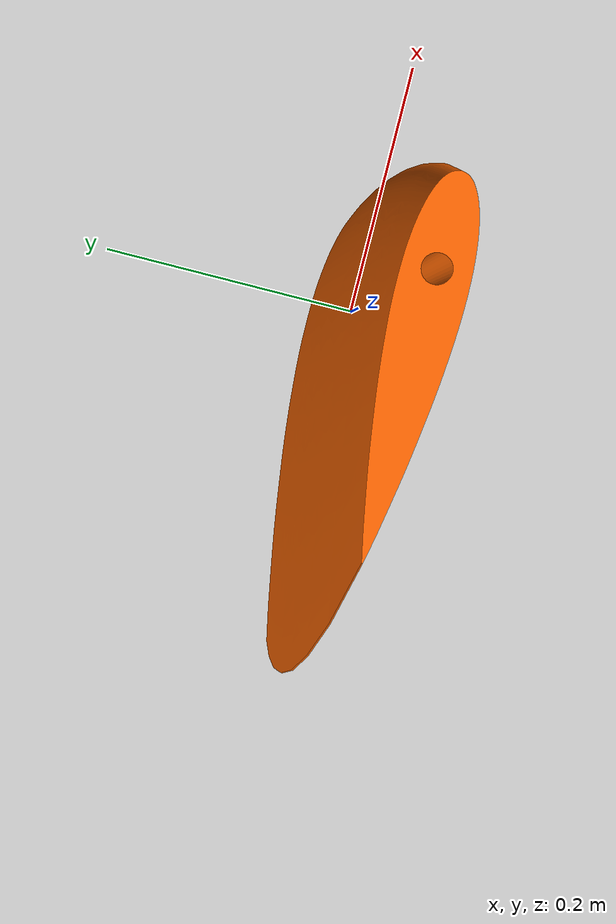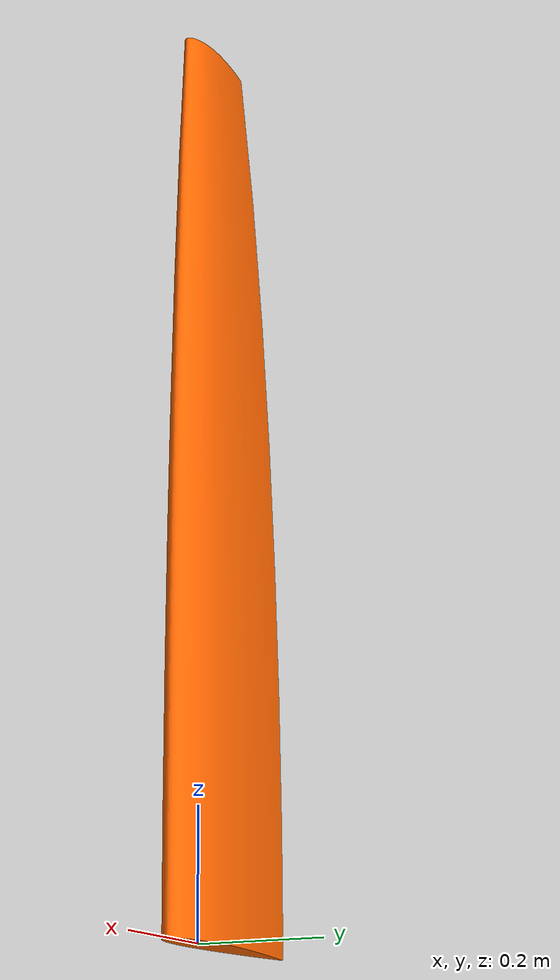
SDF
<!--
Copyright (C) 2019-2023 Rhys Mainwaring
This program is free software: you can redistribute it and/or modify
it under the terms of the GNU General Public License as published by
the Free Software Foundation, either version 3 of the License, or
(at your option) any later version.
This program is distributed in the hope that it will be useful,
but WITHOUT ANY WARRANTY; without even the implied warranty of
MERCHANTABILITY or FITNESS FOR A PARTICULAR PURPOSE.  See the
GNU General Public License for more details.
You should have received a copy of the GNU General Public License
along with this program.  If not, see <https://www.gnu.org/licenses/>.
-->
<?xml version="1.0"?>
<sdf version="1.6">
  <model name="wing_sail_naca0018_1.4m">

    <!-- Plugins -->

    <!--
      Linear approximations to lift / drag coefficient curves for
      NACA 0018 airfoil.
      Foil stalls at approx. 14 degrees (lower in the linear approx.)
    -->
    <plugin name="gz::sim::systems::SailLiftDrag"
        filename="asv_sim2-sail-lift-drag-system">
      <a0>0.0</a0>
      <cla>6.2832</cla>
      <alpha_stall>0.1592</alpha_stall>
      <cla_stall>-0.7083</cla_stall>
      <cda>0.63662</cda>
      <area>0.4858</area>
      <fluid_density>1.2</fluid_density>
      <forward>1 0 0</forward>
      <upward>0 1 0</upward>
      <cp>-0.05 0.0 0.65</cp>
      <link_name>wing_sail_link</link_name>
      <radial_symmetry>true</radial_symmetry>
      <topic>lift_drag</topic>
    </plugin>

    <link name="wing_sail_link">
      <inertial>
        <pose>-0.05 0.0 0.65 0 0 0</pose>
        <mass>2.0</mass>
        <inertia>
          <ixx>0.326733333</ixx>
          <ixy>0</ixy>
          <iyy>0.348266667</iyy>
          <iyz>0</iyz>
          <izz>0.021666667</izz>
        </inertia>
      </inertial>
      <collision name="wing_sail_collision">
        <pose>-0.09 0 0.7 0 0 0</pose>
        <geometry>
          <box>
            <size>0.35 0.07 1.4</size>
          </box>
        </geometry>
      </collision>
      <visual name="wing_sail_visual">
        <geometry>
          <mesh>
            <uri>model://wing_sail_naca0018_1.4m/meshes/wing_sail.stl</uri>
          </mesh>
        </geometry>
        <material>
          <ambient>1.0 0.4 0.0 0.9</ambient>
          <diffuse>1.0 0.4 0.0 0.9</diffuse>
          <specular>0.1 0.1 0.1 1.0</specular>
        </material>
      </visual>
      <visual name="cp_visual">
        <pose>-0.05 0 0.65 0 0 0</pose>
        <geometry>
          <sphere>
            <radius>0.01</radius>
          </sphere>
        </geometry>
        <material>
          <ambient>1.0 0.0 0.0 1.0</ambient>
          <diffuse>1.0 0.0 0.0 1.0</diffuse>
          <specular>0.1 0.1 0.1 1.0</specular>
        </material>
      </visual>
    </link>

  </model>
</sdf>
